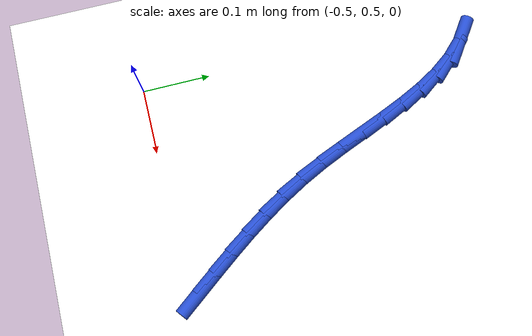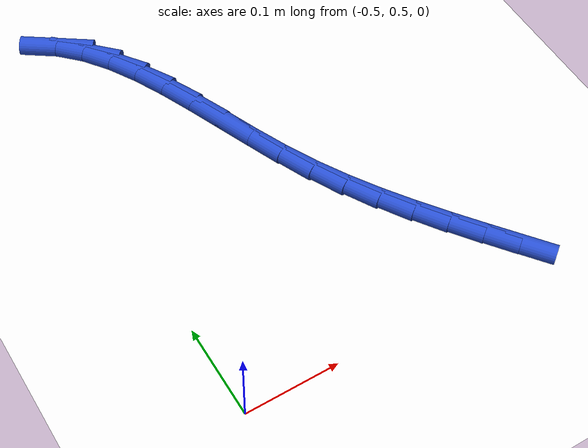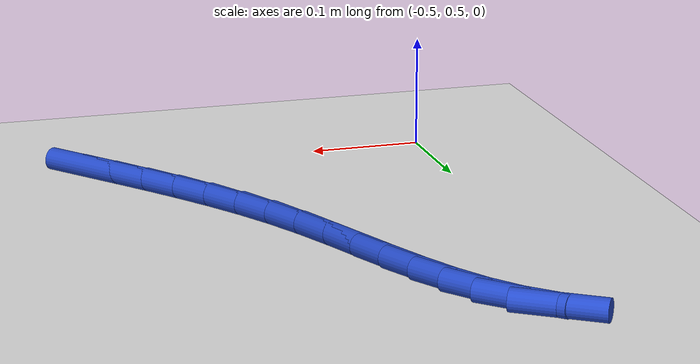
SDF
<sdf version="1.6">
 <world name="default">
  <model name="ground_plane">
   <static>1</static>
   <link name="link">
    <collision name="collision">
     <geometry><plane><normal>0 0 1</normal><size>100 100</size></plane></geometry>
     <surface><friction><ode><mu>100</mu><mu2>50</mu2></ode></friction></surface>
    </collision>
    <visual name="visual">
     <cast_shadows>0</cast_shadows>
     <geometry><plane><normal>0 0 1</normal><size>100 100</size></plane></geometry>
     <material>
      <script><uri>file://media/materials/scripts/gazebo.material</uri><name>Gazebo/WhiteGlow</name></script>
     </material>
    </visual>
   </link>
  </model>
  <model name="line">
   <link name="link_16">
    <pose>-0.1824817304411771 0.5180924240552627 0.01 0 1.57 -0.9054338920843115</pose>
    <collision name="collision">
     <geometry><cylinder><radius>0.01</radius><length>0.08</length></cylinder></geometry>
    </collision>
    <visual name="visual">
     <material>
      <script><name>Gazebo/Blue</name><uri>file://media/materials/scripts/gazebo.material</uri></script>
     </material>
     <geometry><cylinder><radius>0.01</radius><length>0.08</length></cylinder></geometry>
    </visual>
   </link>
   <link name="link_17">
    <pose>-0.20443874901851475 0.5460726529796347 0.01 0 1.57 -0.9150789978626155</pose>
    <collision name="collision">
     <geometry><cylinder><radius>0.01</radius><length>0.08</length></cylinder></geometry>
    </collision>
    <visual name="visual">
     <material>
      <script><name>Gazebo/Blue</name><uri>file://media/materials/scripts/gazebo.material</uri></script>
     </material>
     <geometry><cylinder><radius>0.01</radius><length>0.08</length></cylinder></geometry>
    </visual>
   </link>
   <link name="link_18">
    <pose>-0.22626743562980964 0.5744486712463492 0.01 0 1.57 -0.9347456010967117</pose>
    <collision name="collision">
     <geometry><cylinder><radius>0.01</radius><length>0.08</length></cylinder></geometry>
    </collision>
    <visual name="visual">
     <material>
      <script><name>Gazebo/Blue</name><uri>file://media/materials/scripts/gazebo.material</uri></script>
     </material>
     <geometry><cylinder><radius>0.01</radius><length>0.08</length></cylinder></geometry>
    </visual>
   </link>
   <link name="link_19">
    <pose>-0.2476713709089263 0.6034346698061206 0.01 0 1.57 -0.9642329522671258</pose>
    <collision name="collision">
     <geometry><cylinder><radius>0.01</radius><length>0.08</length></cylinder></geometry>
    </collision>
    <visual name="visual">
     <material>
      <script><name>Gazebo/Blue</name><uri>file://media/materials/scripts/gazebo.material</uri></script>
     </material>
     <geometry><cylinder><radius>0.01</radius><length>0.08</length></cylinder></geometry>
    </visual>
   </link>
   <link name="link_20">
    <pose>-0.26835413548972914 0.6332448396096632 0.01 0 1.57 -1.0032763263265234</pose>
    <collision name="collision">
     <geometry><cylinder><radius>0.01</radius><length>0.08</length></cylinder></geometry>
    </collision>
    <visual name="visual">
     <material>
      <script><name>Gazebo/Blue</name><uri>file://media/materials/scripts/gazebo.material</uri></script>
     </material>
     <geometry><cylinder><radius>0.01</radius><length>0.08</length></cylinder></geometry>
    </visual>
   </link>
   <link name="link_21">
    <pose>-0.2880193100060825 0.6640933716076909 0.01 0 1.57 -1.0514696932113152</pose>
    <collision name="collision">
     <geometry><cylinder><radius>0.01</radius><length>0.08</length></cylinder></geometry>
    </collision>
    <visual name="visual">
     <material>
      <script><name>Gazebo/Blue</name><uri>file://media/materials/scripts/gazebo.material</uri></script>
     </material>
     <geometry><cylinder><radius>0.01</radius><length>0.08</length></cylinder></geometry>
    </visual>
   </link>
   <link name="link_22">
    <pose>-0.306370475091851 0.6961944567509185 0.01 0 1.57 -1.1074434799144157</pose>
    <collision name="collision">
     <geometry><cylinder><radius>0.01</radius><length>0.08</length></cylinder></geometry>
    </collision>
    <visual name="visual">
     <material>
      <script><name>Gazebo/Blue</name><uri>file://media/materials/scripts/gazebo.material</uri></script>
     </material>
     <geometry><cylinder><radius>0.01</radius><length>0.08</length></cylinder></geometry>
    </visual>
   </link>
   <link name="link_23">
    <pose>-0.32313145726287845 0.7297411381782275 0.01 0 1.57 -1.15483543501018</pose>
    <collision name="collision">
     <geometry><cylinder><radius>0.01</radius><length>0.08</length></cylinder></geometry>
    </collision>
    <visual name="visual">
     <material>
      <script><name>Gazebo/Blue</name><uri>file://media/materials/scripts/gazebo.material</uri></script>
     </material>
     <geometry><cylinder><radius>0.01</radius><length>0.08</length></cylinder></geometry>
    </visual>
   </link>
   <link name="link_24">
    <pose>-0.3384695018997493 0.7644632863831213 0.01 0 1.57 -1.1794804909377974</pose>
    <collision name="collision">
     <geometry><cylinder><radius>0.01</radius><length>0.08</length></cylinder></geometry>
    </collision>
    <visual name="visual">
     <material>
      <script><name>Gazebo/Blue</name><uri>file://media/materials/scripts/gazebo.material</uri></script>
     </material>
     <geometry><cylinder><radius>0.01</radius><length>0.08</length></cylinder></geometry>
    </visual>
   </link>
   <link name="link_25">
    <pose>-0.352983260585647 0.7996401470256107 0.01 0 1.57 -1.181694854691323</pose>
    <collision name="collision">
     <geometry><cylinder><radius>0.01</radius><length>0.08</length></cylinder></geometry>
    </collision>
    <visual name="visual">
     <material>
      <script><name>Gazebo/Blue</name><uri>file://media/materials/scripts/gazebo.material</uri></script>
     </material>
     <geometry><cylinder><radius>0.01</radius><length>0.08</length></cylinder></geometry>
    </visual>
   </link>
   <link name="link_26">
    <pose>-0.3672892276851839 0.8345323281096836 0.01 0 1.57 -1.1609321161785238</pose>
    <collision name="collision">
     <geometry><cylinder><radius>0.01</radius><length>0.08</length></cylinder></geometry>
    </collision>
    <visual name="visual">
     <material>
      <script><name>Gazebo/Blue</name><uri>file://media/materials/scripts/gazebo.material</uri></script>
     </material>
     <geometry><cylinder><radius>0.01</radius><length>0.08</length></cylinder></geometry>
    </visual>
   </link>
   <link name="link_27">
    <pose>-0.3820038975629723 0.8684004376393286 0.01 0 1.57 -1.114964925242594</pose>
    <collision name="collision">
     <geometry><cylinder><radius>0.01</radius><length>0.08</length></cylinder></geometry>
    </collision>
    <visual name="visual">
     <material>
      <script><name>Gazebo/Blue</name><uri>file://media/materials/scripts/gazebo.material</uri></script>
     </material>
     <geometry><cylinder><radius>0.01</radius><length>0.08</length></cylinder></geometry>
    </visual>
   </link>
   <link name="link_28">
    <pose>-0.39774376458362404 0.9005050836185332 0.01 0 1.57 -1.0398571533578758</pose>
    <collision name="collision">
     <geometry><cylinder><radius>0.01</radius><length>0.08</length></cylinder></geometry>
    </collision>
    <visual name="visual">
     <material>
      <script><name>Gazebo/Blue</name><uri>file://media/materials/scripts/gazebo.material</uri></script>
     </material>
     <geometry><cylinder><radius>0.01</radius><length>0.08</length></cylinder></geometry>
    </visual>
   </link>
   <link name="link_29">
    <pose>-0.4151253231117518 0.9301068740512863 0.01 0 1.57 -0.9304569212374105</pose>
    <collision name="collision">
     <geometry><cylinder><radius>0.01</radius><length>0.08</length></cylinder></geometry>
    </collision>
    <visual name="visual">
     <material>
      <script><name>Gazebo/Blue</name><uri>file://media/materials/scripts/gazebo.material</uri></script>
     </material>
     <geometry><cylinder><radius>0.01</radius><length>0.08</length></cylinder></geometry>
    </visual>
   </link>
   <link name="link_30">
    <pose>-0.43476506751196714 0.9564664169415751 0.01 0 1.57 -0.7823570900033178</pose>
    <collision name="collision">
     <geometry><cylinder><radius>0.01</radius><length>0.08</length></cylinder></geometry>
    </collision>
    <visual name="visual">
     <material>
      <script><name>Gazebo/Blue</name><uri>file://media/materials/scripts/gazebo.material</uri></script>
     </material>
     <geometry><cylinder><radius>0.01</radius><length>0.08</length></cylinder></geometry>
    </visual>
   </link>
   <link name="link_31">
    <pose>-0.4572794921488828 0.978844320293388 0.01 0 1.57 -0.6028020230998821</pose>
    <collision name="collision">
     <geometry><cylinder><radius>0.01</radius><length>0.08</length></cylinder></geometry>
    </collision>
    <visual name="visual">
     <material>
      <script><name>Gazebo/Blue</name><uri>file://media/materials/scripts/gazebo.material</uri></script>
     </material>
     <geometry><cylinder><radius>0.01</radius><length>0.08</length></cylinder></geometry>
    </visual>
   </link>
  </model>
 </world>
</sdf>
